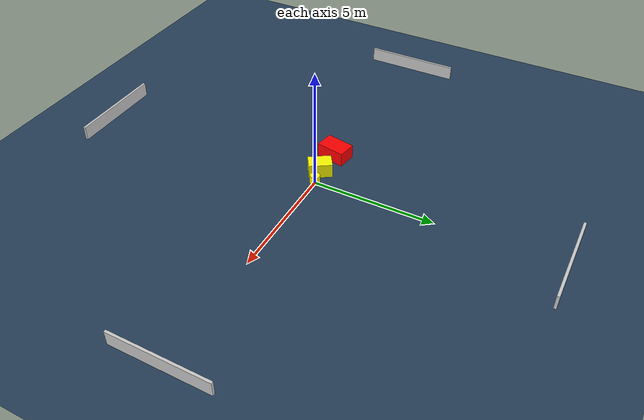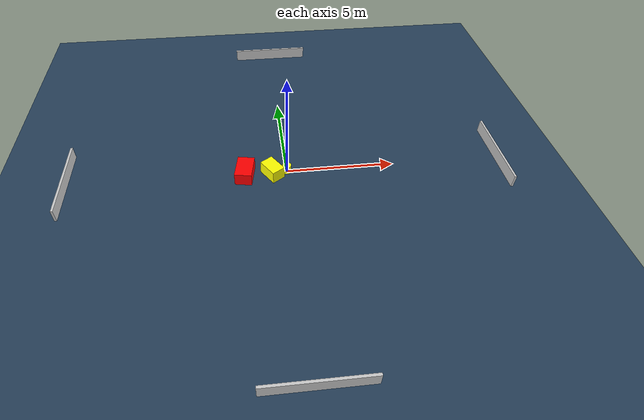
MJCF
<?xml version="1.0" ?>
<mujoco model="generated_environment">
  <option timestep="0.01" integrator="RK4" cone="elliptic"/>
  <default>
    <geom density="1"/>
  </default>
  <asset>
    <texture builtin="gradient" height="3072" name="skybox" rgb1="0.3 0.5 0.7" rgb2="0 0 0" type="skybox" width="512"/>
    <texture builtin="checker" height="300" name="groundplane" rgb1="0.2 0.3 0.4" rgb2="0.1 0.2 0.3" type="2d" width="300"/>
    <material name="groundplane" reflectance="0.2" texrepeat="5 5" texture="groundplane"/>
  </asset>
  <worldbody>
    <light dir="0 0 -1" directional="true" pos="0 0 1.5"/>
    <geom condim="3" friction="0.5 0.005 0.001" material="groundplane" name="floor" pos="0 0 0" size="0 0 0.05" type="plane"/>
    <body name="walls">
      <geom name="wall_1" condim="4" pos="-10.0 0.0 0.3" rgba="0.800000011920929 0.800000011920929 0.800000011920929 1.0" size="0.05 2.0 0.3" type="box"/>
      <geom name="wall_2" condim="4" pos="10.0 0.0 0.3" rgba="0.800000011920929 0.800000011920929 0.800000011920929 1.0" size="0.05 2.0 0.3" type="box"/>
      <geom name="wall_3" condim="4" pos="0.0 -10.0 0.3" rgba="0.800000011920929 0.800000011920929 0.800000011920929 1.0" size="2.0 0.05 0.3" type="box"/>
      <geom name="wall_4" condim="4" pos="0.0 10.0 0.3" rgba="0.800000011920929 0.800000011920929 0.800000011920929 1.0" size="2.0 0.05 0.3" type="box"/>
    </body>
    <body name="robot">
      <joint name="joint_x" type="slide" pos="0 0 0" axis="1 0 0"/>
      <joint name="joint_y" type="slide" pos="0 0 0" axis="0 1 0"/>
      <geom name="robot" type="cylinder" pos="0.0 0.0 0.2" size="0.2 0.2 0.0" mass="5.0" friction="1.0 0.005 0.0001" condim="4" rgba="1.0 1.0 0.0 1.0"/>
    </body>
    <body name="obstacle_1_movable">
      <geom name="obstacle_1_movable" condim="4" pos="-0.6803624842171208 -0.13326601336766716 0.3" euler="0 0 123.03279393757481" friction="0.0 0.005 0.001" rgba="1.0 1.0 0.0 1.0" size="0.47663131565863986 0.31927279733564273 0.3" type="box" mass="0.1"/>
      <joint type="free"/>
    </body>
    <body name="obstacle_2_static">
      <geom name="obstacle_2_static" condim="4" pos="-1.9405803289113197 -0.08328044813142678 0.3" euler="0 0 169.66871723529556" friction="0.0 0.005 0.001" rgba="1.0 0.0 0.0 1.0" size="0.38742314149193835 0.5950414538407521 0.3" type="box"/>
    </body>
  </worldbody>
  <actuator>
    <motor name="actuator_x" joint="joint_x" gear="1" ctrlrange="-1 1"/>
    <motor name="actuator_y" joint="joint_y" gear="1" ctrlrange="-1 1"/>
  </actuator>
</mujoco>
